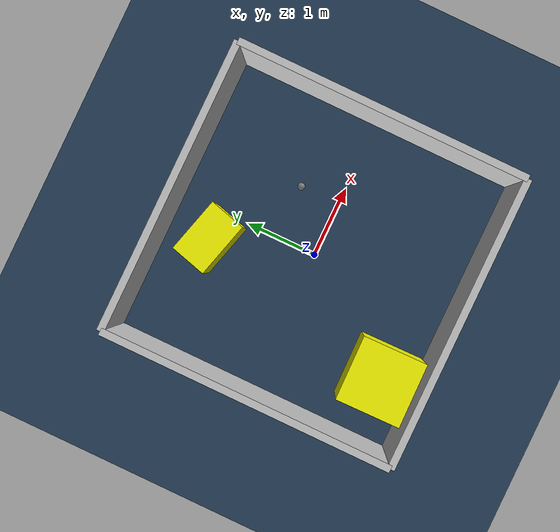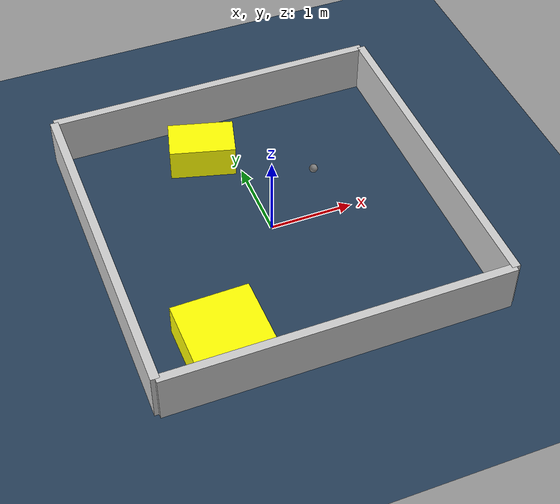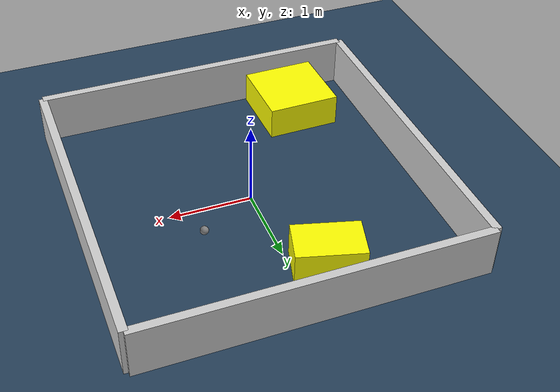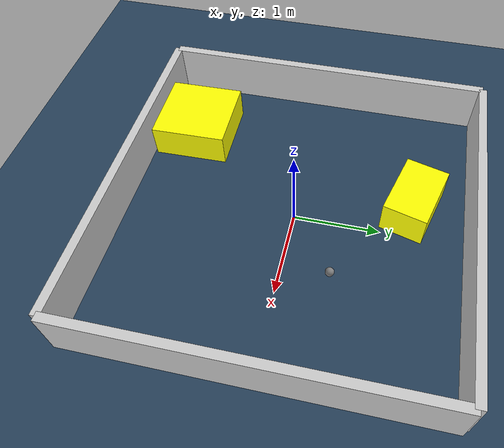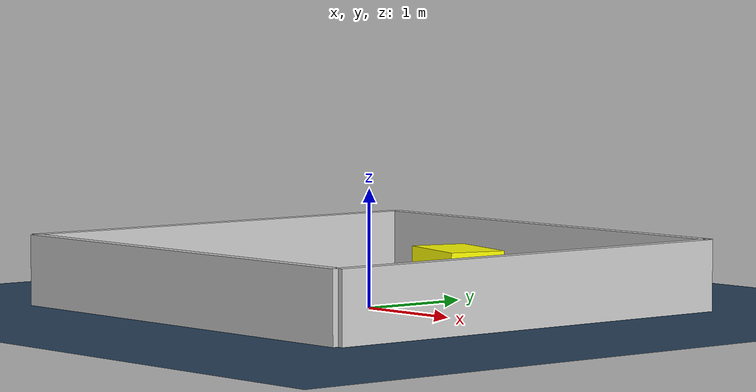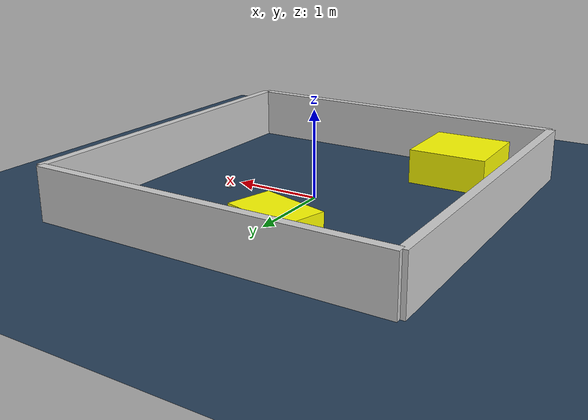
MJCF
<?xml version="1.0" ?>
<mujoco model="generated_environment">
  <option timestep="0.01" integrator="RK4" cone="elliptic"/>
  <default>
    <geom density="1"/>
  </default>
  <asset>
    <texture builtin="gradient" height="3072" rgb1="0.3 0.5 0.7" rgb2="0 0 0" type="skybox" width="512"/>
    <texture builtin="checker" height="300" mark="edge" markrgb="0.8 0.8 0.8" name="groundplane" rgb1="0.2 0.3 0.4" rgb2="0.1 0.2 0.3" type="2d" width="300"/>
    <material name="groundplane" reflectance="0.2" texrepeat="5 5" texture="groundplane" texuniform="true"/>
    <material name="robot" rgba="0.0 1.0 0.0 1"/>
  </asset>
  <worldbody>
    <light dir="0 0 -1" directional="true" pos="0 0 1.5"/>
    <geom condim="4" friction="1.0 0.005 0.001" material="groundplane" name="floor" size="0 0 0.05" type="plane"/>
    <body name="walls">
      <geom name="wall_1" condim="4" pos="-2.0 0.0 0.3" rgba="0.800000011920929 0.800000011920929 0.800000011920929 1.0" size="0.05 2.0 0.3" type="box"/>
      <geom name="wall_2" condim="4" pos="2.0 0.0 0.3" rgba="0.800000011920929 0.800000011920929 0.800000011920929 1.0" size="0.05 2.0 0.3" type="box"/>
      <geom name="wall_3" condim="4" pos="0.0 -2.0 0.3" rgba="0.800000011920929 0.800000011920929 0.800000011920929 1.0" size="2.0 0.05 0.3" type="box"/>
      <geom name="wall_4" condim="4" pos="0.0 2.0 0.3" rgba="0.800000011920929 0.800000011920929 0.800000011920929 1.0" size="2.0 0.05 0.3" type="box"/>
    </body>
    <body name="robot">
      <joint name="joint_x" type="slide" pos="0 0 0" axis="1 0 0"/>
      <joint name="joint_y" type="slide" pos="0 0 0" axis="0 1 0"/>
      <geom name="robot" type="sphere" pos="0.7467976695358445 0.5444626876515182 0.2" size="0.05" mass="5." friction="1.0 0.005 0.0001" condim="4"/>
      <site name="sensor_ball"/>
    </body>
    <body name="obstacle_1_movable">
      <geom name="obstacle_1_movable" condim="4" pos="-0.38607330878811696 1.3338796733892992 0.2" euler="0 0 164.64146002680354" friction="1.0 0.005 0.001" rgba="1 1 0 1" size="0.39234571220567127 0.2533118029381692 0.2" type="box" mass="0.1"/>
      <joint type="free"/>
    </body>
    <body name="obstacle_2_movable">
      <geom name="obstacle_2_movable" condim="4" pos="-1.1035255963112793 -1.4807456676434352 0.2" euler="0 0 180.9606440205409" friction="1.0 0.005 0.001" rgba="1 1 0 1" size="0.44793603035900886 0.44783130344986977 0.2" type="box" mass="0.1"/>
      <joint type="free"/>
    </body>
  </worldbody>
  <actuator>
    <motor name="actuator_x" joint="joint_x" gear="1" ctrlrange="-1 1"/>
    <motor name="actuator_y" joint="joint_y" gear="1" ctrlrange="-1 1"/>
  </actuator>
</mujoco>
